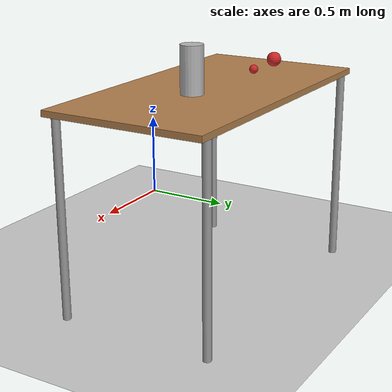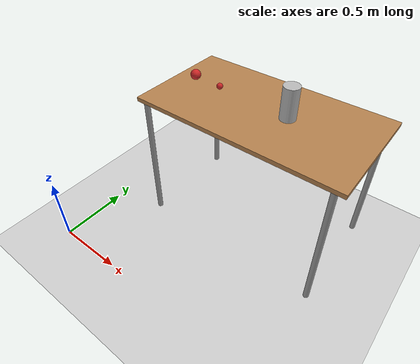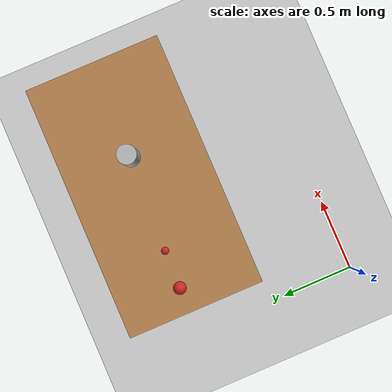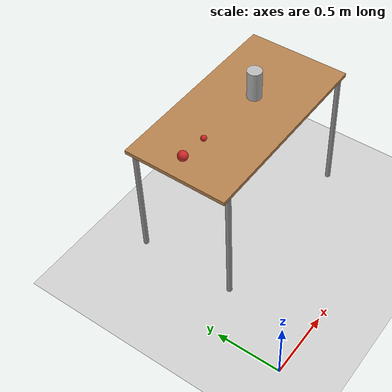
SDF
<sdf version="1.7">
 <world name="mp_world">
  <physics type="ode">
   <max_step_size>0.001</max_step_size>
   <real_time_factor>1</real_time_factor>
   <real_time_update_rate>1000</real_time_update_rate>
   <gravity>0 0 -9.81</gravity>
  </physics>
  <plugin name="gazebo_ros" filename="libgazebo_ros_api_plugin.so"><always_on>1</always_on></plugin>
  <light name="sun" type="directional">
   <pose>0 0 10 0 -0 0</pose>
   <diffuse>0.8 0.8 0.8 1</diffuse>
   <specular>0.2 0.2 0.2 1</specular>
   <attenuation>
    <range>1000</range>
    <constant>0.9</constant>
    <linear>0.01</linear>
    <quadratic>0.001</quadratic>
   </attenuation>
   <direction>-0.5 0.1 -0.9</direction>
   <spot><inner_angle>0</inner_angle><outer_angle>0</outer_angle><falloff>0</falloff></spot>
  </light>
  <model name="ground_plane">
   <static>1</static>
   <link name="link">
    <collision name="collision">
     <geometry><plane><normal>0 0 1</normal><size>100 100</size></plane></geometry>
     <surface><friction><ode><mu>100</mu><mu2>50</mu2></ode></friction></surface>
    </collision>
    <visual name="visual">
     <cast_shadows>0</cast_shadows>
     <geometry><plane><normal>0 0 1</normal><size>100 100</size></plane></geometry>
     <material>
      <script><uri>file://media/materials/scripts/gazebo.material</uri><name>Gazebo/Grey</name></script>
     </material>
    </visual>
   </link>
  </model>
  <model name="table">
   <static>1</static>
   <link name="link">
    <collision name="surface">
     <pose>0 0 1 0 -0 0</pose>
     <geometry><box><size>1.5 0.8 0.03</size></box></geometry>
     <surface><friction><ode><mu>0.6</mu><mu2>0.6</mu2></ode></friction></surface>
    </collision>
    <visual name="visual1">
     <pose>0 0 1 0 -0 0</pose>
     <geometry><box><size>1.5 0.8 0.03</size></box></geometry>
     <material>
      <script><uri>file://media/materials/scripts/gazebo.material</uri><name>Gazebo/Wood</name></script>
     </material>
    </visual>
    <collision name="front_left_leg_collision">
     <pose>0.68 0.38 0.5 0 -0 0</pose>
     <geometry><cylinder><radius>0.02</radius><length>1</length></cylinder></geometry>
    </collision>
    <visual name="front_left_leg">
     <pose>0.68 0.38 0.5 0 -0 0</pose>
     <geometry><cylinder><radius>0.02</radius><length>1</length></cylinder></geometry>
     <material>
      <script><uri>file://media/materials/scripts/gazebo.material</uri><name>Gazebo/Grey</name></script>
     </material>
    </visual>
    <collision name="front_right_leg_collision">
     <pose>0.68 -0.38 0.5 0 -0 0</pose>
     <geometry><cylinder><radius>0.02</radius><length>1</length></cylinder></geometry>
    </collision>
    <visual name="front_right_leg">
     <pose>0.68 -0.38 0.5 0 -0 0</pose>
     <geometry><cylinder><radius>0.02</radius><length>1</length></cylinder></geometry>
     <material>
      <script><uri>file://media/materials/scripts/gazebo.material</uri><name>Gazebo/Grey</name></script>
     </material>
    </visual>
    <collision name="back_right_leg_collision">
     <pose>-0.68 -0.38 0.5 0 -0 0</pose>
     <geometry><cylinder><radius>0.02</radius><length>1</length></cylinder></geometry>
    </collision>
    <visual name="back_right_leg">
     <pose>-0.68 -0.38 0.5 0 -0 0</pose>
     <geometry><cylinder><radius>0.02</radius><length>1</length></cylinder></geometry>
     <material>
      <script><uri>file://media/materials/scripts/gazebo.material</uri><name>Gazebo/Grey</name></script>
     </material>
    </visual>
    <collision name="back_left_leg_coliision">
     <pose>-0.68 0.38 0.5 0 -0 0</pose>
     <geometry><cylinder><radius>0.02</radius><length>1</length></cylinder></geometry>
    </collision>
    <visual name="back_left_leg">
     <pose>-0.68 0.38 0.5 0 -0 0</pose>
     <geometry><cylinder><radius>0.02</radius><length>1</length></cylinder></geometry>
     <material>
      <script><uri>file://media/materials/scripts/gazebo.material</uri><name>Gazebo/Grey</name></script>
     </material>
    </visual>
   </link>
   <pose>1.03012 1.03127 0 0 -0 0</pose>
  </model>
  <gravity>0 0 -9.8</gravity>
  <magnetic_field>6e-06 2.3e-05 -4.2e-05</magnetic_field>
  <atmosphere type="adiabatic"/>
  <scene><ambient>0.4 0.4 0.4 1</ambient><background>0.7 0.7 0.7 1</background><shadows>1</shadows></scene>
  <spherical_coordinates>
   <surface_model>EARTH_WGS84</surface_model>
   <latitude_deg>0</latitude_deg>
   <longitude_deg>0</longitude_deg>
   <elevation>0</elevation>
   <heading_deg>0</heading_deg>
  </spherical_coordinates>
  <model name="cricket_ball">
   <link name="link">
    <pose>0 0 0.0375 0 -0 0</pose>
    <inertial>
     <mass>0.1467</mass>
     <inertia>
      <ixx>8.25187e-05</ixx>
      <ixy>0</ixy>
      <ixz>0</ixz>
      <iyy>8.25187e-05</iyy>
      <iyz>0</iyz>
      <izz>8.25187e-05</izz>
     </inertia>
    </inertial>
    <collision name="collision">
     <geometry><sphere><radius>0.0375</radius></sphere></geometry>
     <surface>
      <contact>
       <poissons_ratio>0.347</poissons_ratio>
       <elastic_modulus>8.8e+09</elastic_modulus>
       <ode><kp>100000</kp><kd>100</kd><max_vel>100</max_vel><min_depth>0.001</min_depth></ode>
      </contact>
      <friction>
       <torsional>
        <coefficient>1</coefficient>
        <use_patch_radius>0</use_patch_radius>
        <surface_radius>0.01</surface_radius>
       </torsional>
      </friction>
     </surface>
    </collision>
    <visual name="visual">
     <geometry><sphere><radius>0.0375</radius></sphere></geometry>
     <material>
      <script><uri>file://media/materials/scripts/gazebo.material</uri><name>Gazebo/Red</name></script>
     </material>
    </visual>
    <velocity_decay><linear>0</linear><angular>0.005</angular></velocity_decay>
   </link>
   <pose>0.430424 1.06529 1.01399 0 -0 0</pose>
  </model>
  <model name="beer">
   <link name="link">
    <pose>0 0 0.115 0 -0 0</pose>
    <inertial>
     <mass>0.39</mass>
     <inertia><ixx>0.00058</ixx><ixy>0</ixy><ixz>0</ixz><iyy>0.00058</iyy><iyz>0</iyz><izz>0.00019</izz></inertia>
    </inertial>
    <collision name="collision">
     <geometry><cylinder><radius>0.055</radius><length>0.23</length></cylinder></geometry>
    </collision>
    <visual name="visual">
     <geometry><cylinder><radius>0.055</radius><length>0.23</length></cylinder></geometry>
     <material>
      <script>
       <uri>model://beer/materials/scripts</uri>
       <uri>model://beer/materials/textures</uri>
       <name>Beer/Diffuse</name>
      </script>
     </material>
    </visual>
   </link>
   <pose>1.20405 1.03383 1.01499 -1e-06 2.6e-05 0.005439</pose>
  </model>
  <model name="cricket_ball_0">
   <link name="link">
    <pose>0 0 0.0375 0 -0 0</pose>
    <inertial>
     <mass>0.0313404</mass>
     <inertia>
      <ixx>6.29993e-06</ixx>
      <ixy>0</ixy>
      <ixz>0</ixz>
      <iyy>6.29993e-06</iyy>
      <iyz>0</iyz>
      <izz>6.29993e-06</izz>
     </inertia>
    </inertial>
    <velocity_decay><linear>0</linear><angular>0.005</angular></velocity_decay>
    <visual name="visual">
     <geometry><sphere><radius>0.0224174</radius></sphere></geometry>
     <material>
      <script><uri>file://media/materials/scripts/gazebo.material</uri><name>Gazebo/Red</name></script>
      <shader type="pixel"/>
     </material>
    </visual>
    <collision name="collision">
     <geometry><sphere><radius>0.022417</radius></sphere></geometry>
     <surface>
      <friction>
       <ode><mu>1</mu><mu2>1</mu2><fdir1>0 0 0</fdir1><slip1>0</slip1><slip2>0</slip2></ode>
       <torsional>
        <coefficient>1</coefficient>
        <patch_radius>0</patch_radius>
        <surface_radius>0.01</surface_radius>
        <use_patch_radius>0</use_patch_radius>
        <ode><slip>0</slip></ode>
       </torsional>
      </friction>
      <bounce><restitution_coefficient>0</restitution_coefficient><threshold>1e+06</threshold></bounce>
      <contact>
       <collide_without_contact>0</collide_without_contact>
       <collide_without_contact_bitmask>1</collide_without_contact_bitmask>
       <collide_bitmask>1</collide_bitmask>
       <ode>
        <soft_cfm>0</soft_cfm>
        <soft_erp>0.2</soft_erp>
        <kp>100000</kp>
        <kd>100</kd>
        <max_vel>100</max_vel>
        <min_depth>0.001</min_depth>
       </ode>
       <bullet>
        <split_impulse>1</split_impulse>
        <split_impulse_penetration_threshold>-0.01</split_impulse_penetration_threshold>
        <soft_cfm>0</soft_cfm>
        <soft_erp>0.2</soft_erp>
        <kp>100000</kp>
        <kd>100</kd>
       </bullet>
      </contact>
     </surface>
    </collision>
   </link>
   <static>0</static>
   <pose>0.650126 1.06068 0.998914 0 -0 0</pose>
  </model>
 </world>
</sdf>
